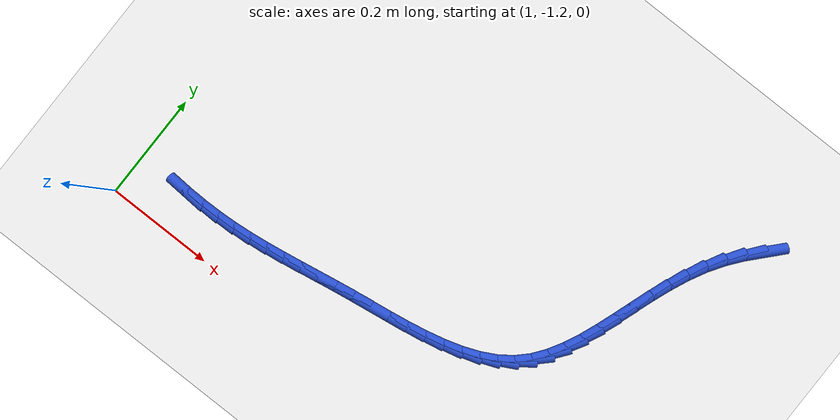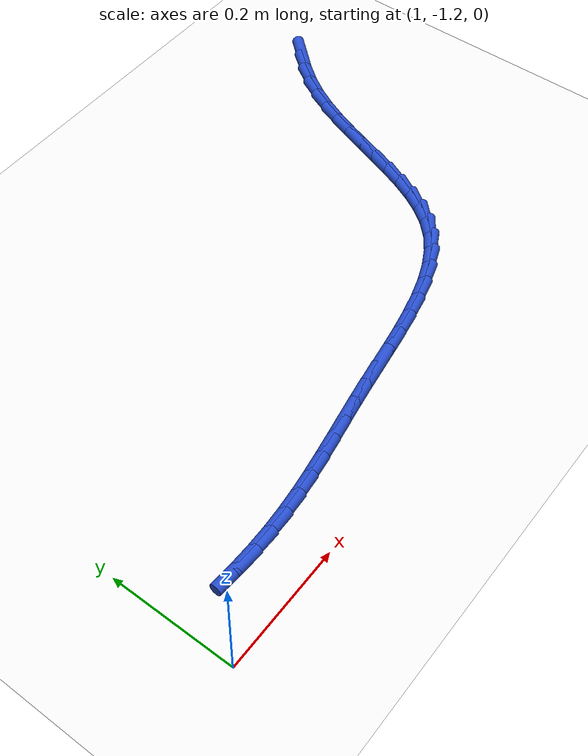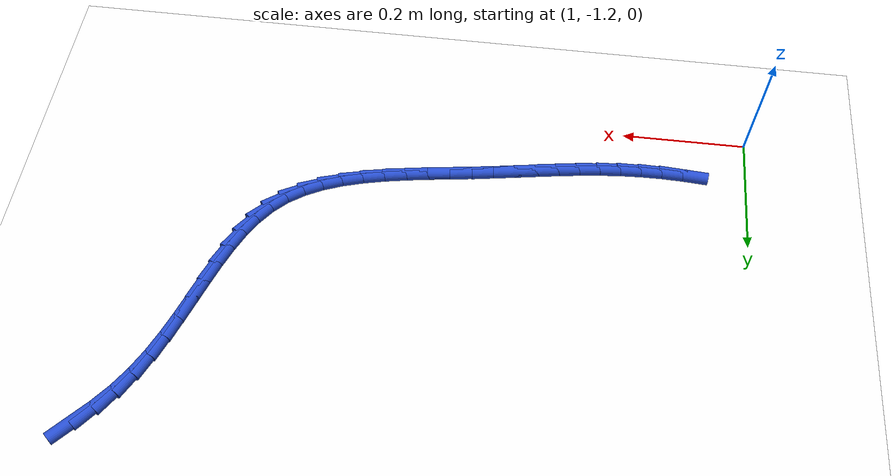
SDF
<sdf version="1.6">
 <world name="default">
  <model name="ground_plane">
   <static>1</static>
   <link name="link">
    <collision name="collision">
     <geometry><plane><normal>0 0 1</normal><size>100 100</size></plane></geometry>
     <surface><friction><ode><mu>100</mu><mu2>50</mu2></ode></friction></surface>
    </collision>
    <visual name="visual">
     <cast_shadows>0</cast_shadows>
     <geometry><plane><normal>0 0 1</normal><size>100 100</size></plane></geometry>
     <material>
      <script><uri>file://media/materials/scripts/gazebo.material</uri><name>Gazebo/WhiteGlow</name></script>
     </material>
    </visual>
   </link>
  </model>
  <model name="line">
   <link name="link_117">
    <pose>1.9623559362178007 -0.5758687383026131 0.01 0 1.57 0.8386455534718995</pose>
    <collision name="collision">
     <geometry><cylinder><radius>0.01</radius><length>0.08</length></cylinder></geometry>
    </collision>
    <visual name="visual">
     <material>
      <script><name>Gazebo/Blue</name><uri>file://media/materials/scripts/gazebo.material</uri></script>
     </material>
     <geometry><cylinder><radius>0.01</radius><length>0.08</length></cylinder></geometry>
    </visual>
   </link>
   <link name="link_118">
    <pose>1.9381558452724477 -0.6027936795062174 0.01 0 1.57 0.9109509362903813</pose>
    <collision name="collision">
     <geometry><cylinder><radius>0.01</radius><length>0.08</length></cylinder></geometry>
    </collision>
    <visual name="visual">
     <material>
      <script><name>Gazebo/Blue</name><uri>file://media/materials/scripts/gazebo.material</uri></script>
     </material>
     <geometry><cylinder><radius>0.01</radius><length>0.08</length></cylinder></geometry>
    </visual>
   </link>
   <link name="link_119">
    <pose>1.9160514532154422 -0.6312839634047678 0.01 0 1.57 1.006010213123128</pose>
    <collision name="collision">
     <geometry><cylinder><radius>0.01</radius><length>0.08</length></cylinder></geometry>
    </collision>
    <visual name="visual">
     <material>
      <script><name>Gazebo/Blue</name><uri>file://media/materials/scripts/gazebo.material</uri></script>
     </material>
     <geometry><cylinder><radius>0.01</radius><length>0.08</length></cylinder></geometry>
    </visual>
   </link>
   <link name="link_120">
    <pose>1.8968072639399138 -0.661654962181499 0.01 0 1.57 1.0966771953109773</pose>
    <collision name="collision">
     <geometry><cylinder><radius>0.01</radius><length>0.08</length></cylinder></geometry>
    </collision>
    <visual name="visual">
     <material>
      <script><name>Gazebo/Blue</name><uri>file://media/materials/scripts/gazebo.material</uri></script>
     </material>
     <geometry><cylinder><radius>0.01</radius><length>0.08</length></cylinder></geometry>
    </visual>
   </link>
   <link name="link_121">
    <pose>1.8803513884758456 -0.6937227667200658 0.01 0 1.57 1.1657647009384213</pose>
    <collision name="collision">
     <geometry><cylinder><radius>0.01</radius><length>0.08</length></cylinder></geometry>
    </collision>
    <visual name="visual">
     <material>
      <script><name>Gazebo/Blue</name><uri>file://media/materials/scripts/gazebo.material</uri></script>
     </material>
     <geometry><cylinder><radius>0.01</radius><length>0.08</length></cylinder></geometry>
    </visual>
   </link>
   <link name="link_122">
    <pose>1.8660881540754102 -0.7269907973197526 0.01 0 1.57 1.2136596072903987</pose>
    <collision name="collision">
     <geometry><cylinder><radius>0.01</radius><length>0.08</length></cylinder></geometry>
    </collision>
    <visual name="visual">
     <material>
      <script><name>Gazebo/Blue</name><uri>file://media/materials/scripts/gazebo.material</uri></script>
     </material>
     <geometry><cylinder><radius>0.01</radius><length>0.08</length></cylinder></geometry>
    </visual>
   </link>
   <link name="link_123">
    <pose>1.853413842453685 -0.760957671529373 0.01 0 1.57 1.2411376406779047</pose>
    <collision name="collision">
     <geometry><cylinder><radius>0.01</radius><length>0.08</length></cylinder></geometry>
    </collision>
    <visual name="visual">
     <material>
      <script><name>Gazebo/Blue</name><uri>file://media/materials/scripts/gazebo.material</uri></script>
     </material>
     <geometry><cylinder><radius>0.01</radius><length>0.08</length></cylinder></geometry>
    </visual>
   </link>
   <link name="link_124">
    <pose>1.8417247353257475 -0.7951220068977409 0.01 0 1.57 1.248492585191122</pose>
    <collision name="collision">
     <geometry><cylinder><radius>0.01</radius><length>0.08</length></cylinder></geometry>
    </collision>
    <visual name="visual">
     <material>
      <script><name>Gazebo/Blue</name><uri>file://media/materials/scripts/gazebo.material</uri></script>
     </material>
     <geometry><cylinder><radius>0.01</radius><length>0.08</length></cylinder></geometry>
    </visual>
   </link>
   <link name="link_125">
    <pose>1.8304171144066743 -0.8289824209736699 0.01 0 1.57 1.2351847323232221</pose>
    <collision name="collision">
     <geometry><cylinder><radius>0.01</radius><length>0.08</length></cylinder></geometry>
    </collision>
    <visual name="visual">
     <material>
      <script><name>Gazebo/Blue</name><uri>file://media/materials/scripts/gazebo.material</uri></script>
     </material>
     <geometry><cylinder><radius>0.01</radius><length>0.08</length></cylinder></geometry>
    </visual>
   </link>
   <link name="link_126">
    <pose>1.818887261411543 -0.8620375313059738 0.01 0 1.57 1.1996535168013691</pose>
    <collision name="collision">
     <geometry><cylinder><radius>0.01</radius><length>0.08</length></cylinder></geometry>
    </collision>
    <visual name="visual">
     <material>
      <script><name>Gazebo/Blue</name><uri>file://media/materials/scripts/gazebo.material</uri></script>
     </material>
     <geometry><cylinder><radius>0.01</radius><length>0.08</length></cylinder></geometry>
    </visual>
   </link>
   <link name="link_127">
    <pose>1.8065314580554306 -0.893785955443466 0.01 0 1.57 1.1393018010624911</pose>
    <collision name="collision">
     <geometry><cylinder><radius>0.01</radius><length>0.08</length></cylinder></geometry>
    </collision>
    <visual name="visual">
     <material>
      <script><name>Gazebo/Blue</name><uri>file://media/materials/scripts/gazebo.material</uri></script>
     </material>
     <geometry><cylinder><radius>0.01</radius><length>0.08</length></cylinder></geometry>
    </visual>
   </link>
   <link name="link_128">
    <pose>1.7927459860534138 -0.9237263109349603 0.01 0 1.57 1.0508383637317058</pose>
    <collision name="collision">
     <geometry><cylinder><radius>0.01</radius><length>0.08</length></cylinder></geometry>
    </collision>
    <visual name="visual">
     <material>
      <script><name>Gazebo/Blue</name><uri>file://media/materials/scripts/gazebo.material</uri></script>
     </material>
     <geometry><cylinder><radius>0.01</radius><length>0.08</length></cylinder></geometry>
    </visual>
   </link>
   <link name="link_129">
    <pose>1.7769271271205709 -0.9513572153292708 0.01 0 1.57 0.9314100570448856</pose>
    <collision name="collision">
     <geometry><cylinder><radius>0.01</radius><length>0.08</length></cylinder></geometry>
    </collision>
    <visual name="visual">
     <material>
      <script><name>Gazebo/Blue</name><uri>file://media/materials/scripts/gazebo.material</uri></script>
     </material>
     <geometry><cylinder><radius>0.01</radius><length>0.08</length></cylinder></geometry>
    </visual>
   </link>
   <link name="link_130">
    <pose>1.7584711629719785 -0.9761772861752107 0.01 0 1.57 0.7811772847612785</pose>
    <collision name="collision">
     <geometry><cylinder><radius>0.01</radius><length>0.08</length></cylinder></geometry>
    </collision>
    <visual name="visual">
     <material>
      <script><name>Gazebo/Blue</name><uri>file://media/materials/scripts/gazebo.material</uri></script>
     </material>
     <geometry><cylinder><radius>0.01</radius><length>0.08</length></cylinder></geometry>
    </visual>
   </link>
   <link name="link_131">
    <pose>1.7367779063764623 -0.9976881822029567 0.01 0 1.57 0.6210510477746543</pose>
    <collision name="collision">
     <geometry><cylinder><radius>0.01</radius><length>0.08</length></cylinder></geometry>
    </collision>
    <visual name="visual">
     <material>
      <script><name>Gazebo/Blue</name><uri>file://media/materials/scripts/gazebo.material</uri></script>
     </material>
     <geometry><cylinder><radius>0.01</radius><length>0.08</length></cylinder></geometry>
    </visual>
   </link>
   <link name="link_132">
    <pose>1.7116047273380952 -1.0156995145209637 0.01 0 1.57 0.4852708008387648</pose>
    <collision name="collision">
     <geometry><cylinder><radius>0.01</radius><length>0.08</length></cylinder></geometry>
    </collision>
    <visual name="visual">
     <material>
      <script><name>Gazebo/Blue</name><uri>file://media/materials/scripts/gazebo.material</uri></script>
     </material>
     <geometry><cylinder><radius>0.01</radius><length>0.08</length></cylinder></geometry>
    </visual>
   </link>
   <link name="link_133">
    <pose>1.6833687768297214 -1.0305891420549547 0.01 0 1.57 0.3772266037501526</pose>
    <collision name="collision">
     <geometry><cylinder><radius>0.01</radius><length>0.08</length></cylinder></geometry>
    </collision>
    <visual name="visual">
     <material>
      <script><name>Gazebo/Blue</name><uri>file://media/materials/scripts/gazebo.material</uri></script>
     </material>
     <geometry><cylinder><radius>0.01</radius><length>0.08</length></cylinder></geometry>
    </visual>
   </link>
   <link name="link_134">
    <pose>1.6525583886871693 -1.042796231207576 0.01 0 1.57 0.29409766860516867</pose>
    <collision name="collision">
     <geometry><cylinder><radius>0.01</radius><length>0.08</length></cylinder></geometry>
    </collision>
    <visual name="visual">
     <material>
      <script><name>Gazebo/Blue</name><uri>file://media/materials/scripts/gazebo.material</uri></script>
     </material>
     <geometry><cylinder><radius>0.01</radius><length>0.08</length></cylinder></geometry>
    </visual>
   </link>
   <link name="link_135">
    <pose>1.619661896746269 -1.0527599483814754 0.01 0 1.57 0.23227742186853248</pose>
    <collision name="collision">
     <geometry><cylinder><radius>0.01</radius><length>0.08</length></cylinder></geometry>
    </collision>
    <visual name="visual">
     <material>
      <script><name>Gazebo/Blue</name><uri>file://media/materials/scripts/gazebo.material</uri></script>
     </material>
     <geometry><cylinder><radius>0.01</radius><length>0.08</length></cylinder></geometry>
    </visual>
   </link>
   <link name="link_136">
    <pose>1.5851676348428494 -1.0609194599792995 0.01 0 1.57 0.1885688329862285</pose>
    <collision name="collision">
     <geometry><cylinder><radius>0.01</radius><length>0.08</length></cylinder></geometry>
    </collision>
    <visual name="visual">
     <material>
      <script><name>Gazebo/Blue</name><uri>file://media/materials/scripts/gazebo.material</uri></script>
     </material>
     <geometry><cylinder><radius>0.01</radius><length>0.08</length></cylinder></geometry>
    </visual>
   </link>
   <link name="link_137">
    <pose>1.54956393681274 -1.067713932403696 0.01 0 1.57 0.16060962520020708</pose>
    <collision name="collision">
     <geometry><cylinder><radius>0.01</radius><length>0.08</length></cylinder></geometry>
    </collision>
    <visual name="visual">
     <material>
      <script><name>Gazebo/Blue</name><uri>file://media/materials/scripts/gazebo.material</uri></script>
     </material>
     <geometry><cylinder><radius>0.01</radius><length>0.08</length></cylinder></geometry>
    </visual>
   </link>
   <link name="link_138">
    <pose>1.5133391364917699 -1.073582532057311 0.01 0 1.57 0.14695957693768583</pose>
    <collision name="collision">
     <geometry><cylinder><radius>0.01</radius><length>0.08</length></cylinder></geometry>
    </collision>
    <visual name="visual">
     <material>
      <script><name>Gazebo/Blue</name><uri>file://media/materials/scripts/gazebo.material</uri></script>
     </material>
     <geometry><cylinder><radius>0.01</radius><length>0.08</length></cylinder></geometry>
    </visual>
   </link>
   <link name="link_139">
    <pose>1.4769815677157692 -1.0789644253427924 0.01 0 1.57 0.14709801134370384</pose>
    <collision name="collision">
     <geometry><cylinder><radius>0.01</radius><length>0.08</length></cylinder></geometry>
    </collision>
    <visual name="visual">
     <material>
      <script><name>Gazebo/Blue</name><uri>file://media/materials/scripts/gazebo.material</uri></script>
     </material>
     <geometry><cylinder><radius>0.01</radius><length>0.08</length></cylinder></geometry>
    </visual>
   </link>
   <link name="link_140">
    <pose>1.4409795643205656 -1.0842987786627862 0.01 0 1.57 0.15914362985511987</pose>
    <collision name="collision">
     <geometry><cylinder><radius>0.01</radius><length>0.08</length></cylinder></geometry>
    </collision>
    <visual name="visual">
     <material>
      <script><name>Gazebo/Blue</name><uri>file://media/materials/scripts/gazebo.material</uri></script>
     </material>
     <geometry><cylinder><radius>0.01</radius><length>0.08</length></cylinder></geometry>
    </visual>
   </link>
   <link name="link_141">
    <pose>1.4057529107977742 -1.089952688576382 0.01 0 1.57 0.1693141697605995</pose>
    <collision name="collision">
     <geometry><cylinder><radius>0.01</radius><length>0.08</length></cylinder></geometry>
    </collision>
    <visual name="visual">
     <material>
      <script><name>Gazebo/Blue</name><uri>file://media/materials/scripts/gazebo.material</uri></script>
     </material>
     <geometry><cylinder><radius>0.01</radius><length>0.08</length></cylinder></geometry>
    </visual>
   </link>
   <link name="link_142">
    <pose>1.3712936390772839 -1.095843530926045 0.01 0 1.57 0.17168956873935204</pose>
    <collision name="collision">
     <geometry><cylinder><radius>0.01</radius><length>0.08</length></cylinder></geometry>
    </collision>
    <visual name="visual">
     <material>
      <script><name>Gazebo/Blue</name><uri>file://media/materials/scripts/gazebo.material</uri></script>
     </material>
     <geometry><cylinder><radius>0.01</radius><length>0.08</length></cylinder></geometry>
    </visual>
   </link>
   <link name="link_143">
    <pose>1.3374290891654506 -1.1017155315219491 0.01 0 1.57 0.16582401497819563</pose>
    <collision name="collision">
     <geometry><cylinder><radius>0.01</radius><length>0.08</length></cylinder></geometry>
    </collision>
    <visual name="visual">
     <material>
      <script><name>Gazebo/Blue</name><uri>file://media/materials/scripts/gazebo.material</uri></script>
     </material>
     <geometry><cylinder><radius>0.01</radius><length>0.08</length></cylinder></geometry>
    </visual>
   </link>
   <link name="link_144">
    <pose>1.3039862550566708 -1.1073125523921206 0.01 0 1.57 0.1514458854008362</pose>
    <collision name="collision">
     <geometry><cylinder><radius>0.01</radius><length>0.08</length></cylinder></geometry>
    </collision>
    <visual name="visual">
     <material>
      <script><name>Gazebo/Blue</name><uri>file://media/materials/scripts/gazebo.material</uri></script>
     </material>
     <geometry><cylinder><radius>0.01</radius><length>0.08</length></cylinder></geometry>
    </visual>
   </link>
   <link name="link_145">
    <pose>1.2707921307453407 -1.1123784555645853 0.01 0 1.57 0.12848072219700982</pose>
    <collision name="collision">
     <geometry><cylinder><radius>0.01</radius><length>0.08</length></cylinder></geometry>
    </collision>
    <visual name="visual">
     <material>
      <script><name>Gazebo/Blue</name><uri>file://media/materials/scripts/gazebo.material</uri></script>
     </material>
     <geometry><cylinder><radius>0.01</radius><length>0.08</length></cylinder></geometry>
    </visual>
   </link>
   <link name="link_146">
    <pose>1.237673710225857 -1.1166571030673689 0.01 0 1.57 0.09709500440857054</pose>
    <collision name="collision">
     <geometry><cylinder><radius>0.01</radius><length>0.08</length></cylinder></geometry>
    </collision>
    <visual name="visual">
     <material>
      <script><name>Gazebo/Blue</name><uri>file://media/materials/scripts/gazebo.material</uri></script>
     </material>
     <geometry><cylinder><radius>0.01</radius><length>0.08</length></cylinder></geometry>
    </visual>
   </link>
   <link name="link_147">
    <pose>1.2044579874926162 -1.1198923569284975 0.01 0 1.57 0.05801373074473559</pose>
    <collision name="collision">
     <geometry><cylinder><radius>0.01</radius><length>0.08</length></cylinder></geometry>
    </collision>
    <visual name="visual">
     <material>
      <script><name>Gazebo/Blue</name><uri>file://media/materials/scripts/gazebo.material</uri></script>
     </material>
     <geometry><cylinder><radius>0.01</radius><length>0.08</length></cylinder></geometry>
    </visual>
   </link>
   <link name="link_148">
    <pose>1.1709796682455245 -1.1218367409517307 0.01 0 1.57 0.01634347237569172</pose>
    <collision name="collision">
     <geometry><cylinder><radius>0.01</radius><length>0.08</length></cylinder></geometry>
    </collision>
    <visual name="visual">
     <material>
      <script><name>Gazebo/Blue</name><uri>file://media/materials/scripts/gazebo.material</uri></script>
     </material>
     <geometry><cylinder><radius>0.01</radius><length>0.08</length></cylinder></geometry>
    </visual>
   </link>
   <link name="link_149">
    <pose>1.137203472157332 -1.1223888104345883 0.01 0 1.57 -0.0241189496621258</pose>
    <collision name="collision">
     <geometry><cylinder><radius>0.01</radius><length>0.08</length></cylinder></geometry>
    </collision>
    <visual name="visual">
     <material>
      <script><name>Gazebo/Blue</name><uri>file://media/materials/scripts/gazebo.material</uri></script>
     </material>
     <geometry><cylinder><radius>0.01</radius><length>0.08</length></cylinder></geometry>
    </visual>
   </link>
   <link name="link_150">
    <pose>1.1032022538711528 -1.1215685777065096 0.01 0 1.57 -0.06342351753726243</pose>
    <collision name="collision">
     <geometry><cylinder><radius>0.01</radius><length>0.08</length></cylinder></geometry>
    </collision>
    <visual name="visual">
     <material>
      <script><name>Gazebo/Blue</name><uri>file://media/materials/scripts/gazebo.material</uri></script>
     </material>
     <geometry><cylinder><radius>0.01</radius><length>0.08</length></cylinder></geometry>
    </visual>
   </link>
  </model>
 </world>
</sdf>
